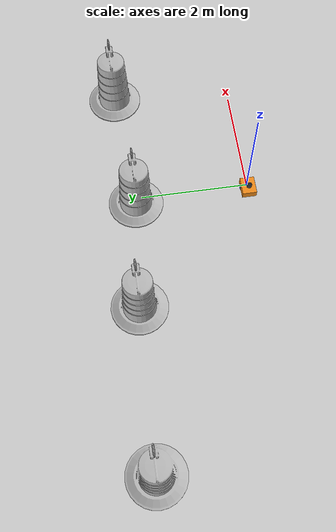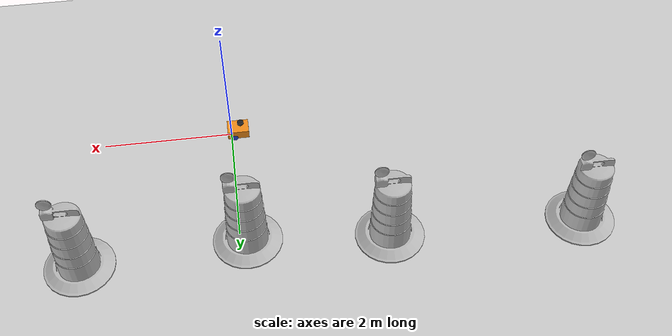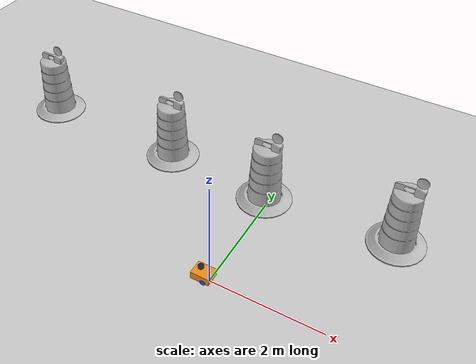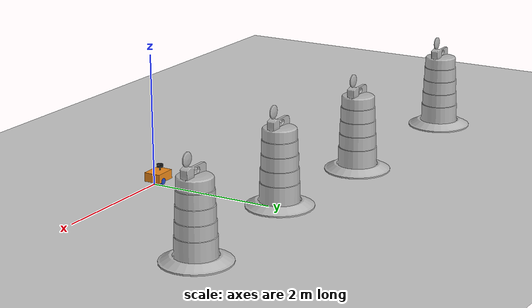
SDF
<sdf version="1.7">
 <world name="default">
  <light name="sun" type="directional">
   <pose>0 0 10 0 -0 0</pose>
   <diffuse>0.8 0.8 0.8 1</diffuse>
   <specular>0.2 0.2 0.2 1</specular>
   <attenuation>
    <range>1000</range>
    <constant>0.9</constant>
    <linear>0.01</linear>
    <quadratic>0.001</quadratic>
   </attenuation>
   <direction>-0.5 0.1 -0.9</direction>
   <spot><inner_angle>0</inner_angle><outer_angle>0</outer_angle><falloff>0</falloff></spot>
  </light>
  <model name="ground_plane">
   <static>1</static>
   <link name="link">
    <collision name="collision">
     <geometry><plane><normal>0 0 1</normal><size>100 100</size></plane></geometry>
     <surface><friction><ode><mu>100</mu><mu2>50</mu2></ode></friction></surface>
    </collision>
    <visual name="visual">
     <cast_shadows>0</cast_shadows>
     <geometry><plane><normal>0 0 1</normal><size>100 100</size></plane></geometry>
     <material>
      <script><uri>file://media/materials/scripts/gazebo.material</uri><name>Gazebo/Grey</name></script>
     </material>
    </visual>
   </link>
  </model>
  <gravity>0 0 -9.8</gravity>
  <magnetic_field>6e-06 2.3e-05 -4.2e-05</magnetic_field>
  <atmosphere type="adiabatic"/>
  <physics type="ode">
   <max_step_size>0.001</max_step_size>
   <real_time_factor>1</real_time_factor>
   <real_time_update_rate>1000</real_time_update_rate>
  </physics>
  <scene><ambient>0.4 0.4 0.4 1</ambient><background>0.7 0.7 0.7 1</background><shadows>1</shadows></scene>
  <audio><device>default</device></audio>
  <spherical_coordinates>
   <surface_model>EARTH_WGS84</surface_model>
   <latitude_deg>0</latitude_deg>
   <longitude_deg>0</longitude_deg>
   <elevation>0</elevation>
   <heading_deg>0</heading_deg>
  </spherical_coordinates>
  <model name="diffdrive_ddsm115">
   <link name="base_link">
    <inertial>
     <pose>-0.067475 0 0.080799 0 -0 0</pose>
     <mass>0.61</mass>
     <inertia>
      <ixx>0.0056513</ixx>
      <ixy>0</ixy>
      <ixz>0.000438568</ixz>
      <iyy>0.00764475</iyy>
      <iyz>0</iyz>
      <izz>0.00797093</izz>
     </inertia>
    </inertial>
    <collision name="base_link_fixed_joint_lump__chassis_collision">
     <pose>-0.0585 0 0.059 0 -0 0</pose>
     <geometry><box><size>0.335 0.265 0.138</size></box></geometry>
    </collision>
    <collision name="base_link_fixed_joint_lump__caster_wheel_collision_1">
     <pose>-0.151 0 -0.04125 0 -0 0</pose>
     <geometry><sphere><radius>0.01</radius></sphere></geometry>
     <surface><friction><ode><mu>0.001</mu><mu2>0.001</mu2></ode></friction></surface>
    </collision>
    <collision name="base_link_fixed_joint_lump__laser_frame_collision_2">
     <pose>-0.104 0 0.202 0 -0 0</pose>
     <geometry><cylinder><length>0.04</length><radius>0.05</radius></cylinder></geometry>
    </collision>
    <visual name="base_link_fixed_joint_lump__chassis_visual">
     <pose>-0.0585 0 0.059 0 -0 0</pose>
     <geometry><box><size>0.335 0.265 0.138</size></box></geometry>
     <material>
      <script><name>Gazebo/Orange</name><uri>file://media/materials/scripts/gazebo.material</uri></script>
     </material>
    </visual>
    <visual name="base_link_fixed_joint_lump__caster_wheel_visual_1">
     <pose>-0.151 0 -0.04125 0 -0 0</pose>
     <geometry><sphere><radius>0.01</radius></sphere></geometry>
     <material>
      <script><name>Gazebo/White</name><uri>file://media/materials/scripts/gazebo.material</uri></script>
     </material>
    </visual>
    <visual name="base_link_fixed_joint_lump__laser_frame_visual_2">
     <pose>-0.104 0 0.202 0 -0 0</pose>
     <geometry><cylinder><length>0.04</length><radius>0.05</radius></cylinder></geometry>
     <material>
      <script><name>Gazebo/Black</name><uri>file://media/materials/scripts/gazebo.material</uri></script>
     </material>
    </visual>
    <visual name="base_link_fixed_joint_lump__laser_frame_visual_3">
     <pose>-0.104 0 0.152 0 -0 0</pose>
     <geometry><cylinder><length>0.1</length><radius>0.01</radius></cylinder></geometry>
     <material>
      <script><name>Gazebo/Black</name><uri>file://media/materials/scripts/gazebo.material</uri></script>
     </material>
    </visual>
    <sensor name="laser" type="ray">
     <visualize>0</visualize>
     <update_rate>10</update_rate>
     <ray>
      <scan>
       <horizontal>
        <samples>360</samples>
        <min_angle>-3.14</min_angle>
        <max_angle>3.14</max_angle>
        <resolution>1</resolution>
       </horizontal>
       <vertical><samples>1</samples><min_angle>0</min_angle><max_angle>0</max_angle></vertical>
      </scan>
      <range><min>0.3</min><max>12</max></range>
     </ray>
     <plugin name="laser_controller" filename="libgazebo_ros_ray_sensor.so">
      <ros><argument>~/out:=scan</argument></ros>
      <output_type>sensor_msgs/LaserScan</output_type>
      <frame_name>laser_frame</frame_name>
     </plugin>
     <pose>-0.104 0 0.202 0 -0 0</pose>
    </sensor>
   </link>
   <joint name="left_wheel_joint" type="revolute">
    <pose relative_to="base_link">0 0.115 0 -1.5708 0 0</pose>
    <parent>base_link</parent>
    <child>left_wheel</child>
    <axis>
     <xyz>0 0 1</xyz>
     <limit><lower>-1e+16</lower><upper>1e+16</upper></limit>
     <dynamics><spring_reference>0</spring_reference><spring_stiffness>0</spring_stiffness></dynamics>
    </axis>
   </joint>
   <link name="left_wheel">
    <pose relative_to="left_wheel_joint">0 0 0 0 -0 0</pose>
    <inertial>
     <mass>0.05</mass>
     <inertia>
      <ixx>3.94987e-05</ixx>
      <ixy>0</ixy>
      <ixz>0</ixz>
      <iyy>3.94987e-05</iyy>
      <iyz>0</iyz>
      <izz>6.56641e-05</izz>
     </inertia>
    </inertial>
    <collision name="left_wheel_collision">
     <geometry><sphere><radius>0.05125</radius></sphere></geometry>
    </collision>
    <visual name="left_wheel_visual">
     <geometry><cylinder><length>0.04</length><radius>0.05125</radius></cylinder></geometry>
     <material>
      <script><name>Gazebo/Blue</name><uri>file://media/materials/scripts/gazebo.material</uri></script>
     </material>
    </visual>
   </link>
   <joint name="right_wheel_joint" type="revolute">
    <pose relative_to="base_link">0 -0.115 0 1.5708 -0 0</pose>
    <parent>base_link</parent>
    <child>right_wheel</child>
    <axis>
     <xyz>0 0 -1</xyz>
     <limit><lower>-1e+16</lower><upper>1e+16</upper></limit>
     <dynamics><spring_reference>0</spring_reference><spring_stiffness>0</spring_stiffness></dynamics>
    </axis>
   </joint>
   <link name="right_wheel">
    <pose relative_to="right_wheel_joint">0 0 0 0 -0 0</pose>
    <inertial>
     <mass>0.05</mass>
     <inertia>
      <ixx>3.94987e-05</ixx>
      <ixy>0</ixy>
      <ixz>0</ixz>
      <iyy>3.94987e-05</iyy>
      <iyz>0</iyz>
      <izz>6.56641e-05</izz>
     </inertia>
    </inertial>
    <collision name="right_wheel_collision">
     <geometry><sphere><radius>0.05125</radius></sphere></geometry>
    </collision>
    <visual name="right_wheel_visual">
     <geometry><cylinder><length>0.04</length><radius>0.05125</radius></cylinder></geometry>
     <material>
      <script><name>Gazebo/Blue</name><uri>file://media/materials/scripts/gazebo.material</uri></script>
     </material>
    </visual>
   </link>
   <static>0</static>
   <plugin name="gazebo_ros2_control" filename="libgazebo_ros2_control.so">
    <parameters>/home/bot/dev_bot/install/diffdrive_ddsm115/share/diffdrive_ddsm115/config/diffbot_controllers.yaml</parameters>
    <parameters>/home/bot/dev_bot/install/diffdrive_ddsm115/share/diffdrive_ddsm115/config/gaz_ros2_ctl_use_sim.yaml</parameters>
   </plugin>
   <pose>-0.053318 0.000931 0.05125 -3e-06 3e-06 -0.000475</pose>
  </model>
  <model name="Construction Barrel">
   <link name="link">
    <inertial>
     <pose>0 0 0.4 0 -0 0</pose>
     <mass>500</mass>
     <inertia><ixx>51.2096</ixx><iyy>51.2096</iyy><izz>25</izz><ixy>0</ixy><ixz>0</ixz><iyz>0</iyz></inertia>
    </inertial>
    <collision name="collision">
     <geometry><mesh><uri>model://construction_barrel/meshes/construction_barrel.dae</uri></mesh></geometry>
    </collision>
    <visual name="visual">
     <geometry><mesh><uri>model://construction_barrel/meshes/construction_barrel.dae</uri></mesh></geometry>
    </visual>
   </link>
   <pose>-0.109294 2.12383 -1e-06 3e-06 1e-05 -7e-06</pose>
  </model>
  <model name="Construction Barrel_0">
   <link name="link">
    <inertial>
     <pose>0 0 0.4 0 -0 0</pose>
     <mass>500</mass>
     <inertia><ixx>51.2096</ixx><iyy>51.2096</iyy><izz>25</izz><ixy>0</ixy><ixz>0</ixz><iyz>0</iyz></inertia>
    </inertial>
    <collision name="collision">
     <geometry><mesh><uri>model://construction_barrel/meshes/construction_barrel.dae</uri></mesh></geometry>
    </collision>
    <visual name="visual">
     <geometry><mesh><uri>model://construction_barrel/meshes/construction_barrel.dae</uri></mesh></geometry>
    </visual>
   </link>
   <pose>-2.177 2.3064 1e-06 2e-06 3e-06 -6e-06</pose>
  </model>
  <model name="Construction Barrel_1">
   <link name="link">
    <inertial>
     <pose>0 0 0.4 0 -0 0</pose>
     <mass>500</mass>
     <inertia><ixx>51.2096</ixx><iyy>51.2096</iyy><izz>25</izz><ixy>0</ixy><ixz>0</ixz><iyz>0</iyz></inertia>
    </inertial>
    <collision name="collision">
     <geometry><mesh><uri>model://construction_barrel/meshes/construction_barrel.dae</uri></mesh></geometry>
    </collision>
    <visual name="visual">
     <geometry><mesh><uri>model://construction_barrel/meshes/construction_barrel.dae</uri></mesh></geometry>
    </visual>
   </link>
   <pose>2.29989 2.26854 0 0 0 -3e-06</pose>
  </model>
  <model name="Construction Barrel_2">
   <link name="link">
    <inertial>
     <pose>0 0 0.4 0 -0 0</pose>
     <mass>500</mass>
     <inertia><ixx>51.2096</ixx><iyy>51.2096</iyy><izz>25</izz><ixy>0</ixy><ixz>0</ixz><iyz>0</iyz></inertia>
    </inertial>
    <collision name="collision">
     <geometry><mesh><uri>model://construction_barrel/meshes/construction_barrel.dae</uri></mesh></geometry>
    </collision>
    <visual name="visual">
     <geometry><mesh><uri>model://construction_barrel/meshes/construction_barrel.dae</uri></mesh></geometry>
    </visual>
   </link>
   <pose>-5.02938 2.38878 -1e-06 3e-06 -2e-06 -2e-06</pose>
  </model>
 </world>
</sdf>
